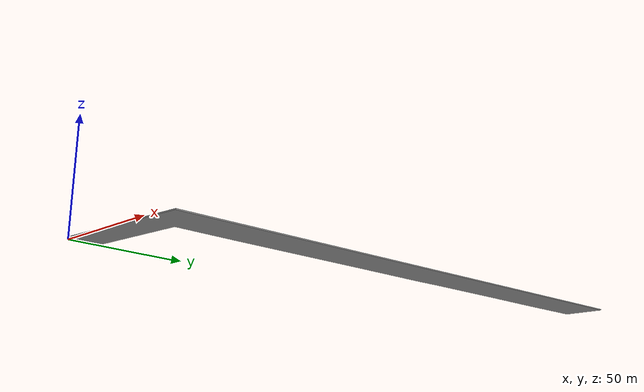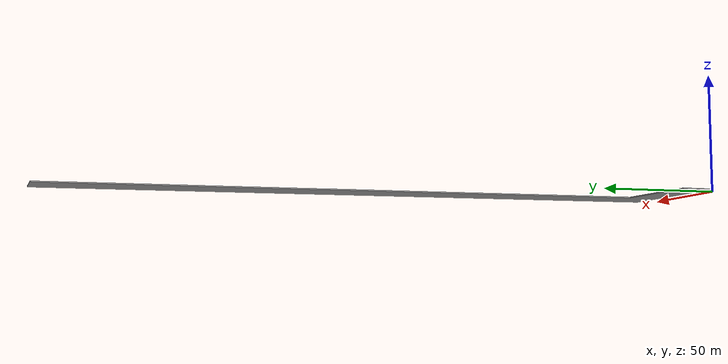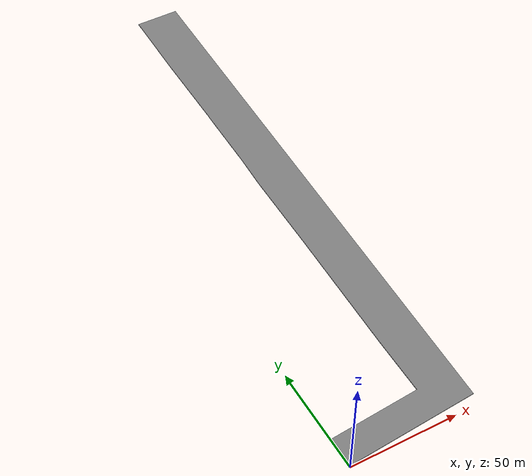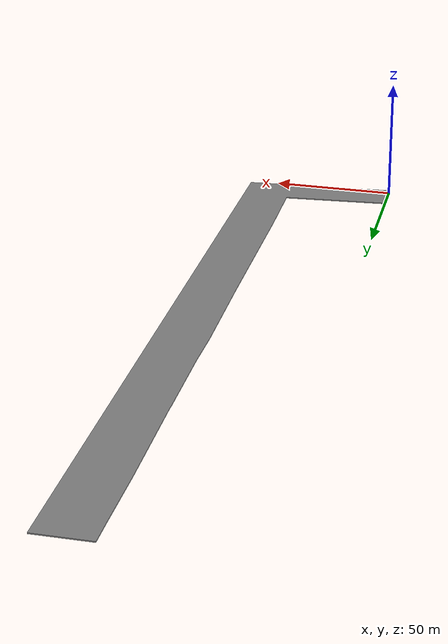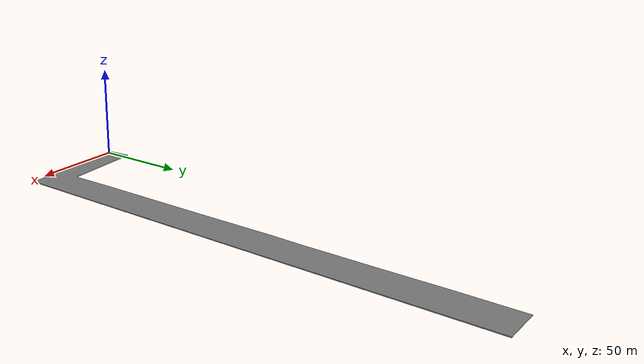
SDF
<?xml version='1.0'?>
<sdf version='1.7'>
  <model name='asphalt_plane_zone_B'>
    <link name='link'>
      <self_collide>0</self_collide>
      <gravity>1</gravity>
      <inertial>
        <mass>1</mass>
        <pose>0 0 0 0 0 0</pose>
        <inertia>
          <ixx>1</ixx>
          <ixy>0</ixy>
          <ixz>0</ixz>
          <iyy>1</iyy>
          <iyz>0</iyz>
          <izz>1</izz>
        </inertia>
      </inertial>
      <enable_wind>0</enable_wind>
      <kinematic>0</kinematic>
      <pose>0 0 1.015 0 0 -0.045</pose>
      <visual name='visual'>
        <pose>0 0 0 0 0 0</pose>
        <geometry>
          <mesh>
            <uri>/marinero_simulations/models/asphalt_plane_zone_B/meshes/asphalt_plane_zone_B.dae</uri>
            <scale>1 1 1</scale>
          </mesh>
        </geometry>
        <material>
          <script>
            <uri>/marinero_simulations/models/asphalt_plane_zone_B/materials/scripts</uri>
            <uri>/marinero_simulations/models/asphalt_plane_zone_B/materials/textures/tarmac.png</uri>
            <name>asphalt_B/texture</name>
          </script>
          <shader type='pixel'>
            <normal_map>__default__</normal_map>
          </shader>
          <ambient>0.5 0.5 0.5 1</ambient>
          <diffuse>0.5 0.5 0.5 1</diffuse>
          <specular>0.2 0.2 0.2 1</specular>
          <emissive>0 0 0 1</emissive>
        </material>
        <transparency>0</transparency>
        <cast_shadows>1</cast_shadows>
      </visual>
      <collision name='collision'>
        <laser_retro>0</laser_retro>
        <max_contacts>10</max_contacts>
        <pose>0 0 0 0 0 0</pose>
        <geometry>
          <mesh>
            <uri>/marinero_simulations/models/asphalt_plane_zone_B/meshes/asphalt_plane_zone_B.dae</uri>
            <scale>1 1 1</scale>
          </mesh>
        </geometry>
        <surface>
          <friction>
            <ode>
              <mu>1</mu>
              <mu2>1</mu2>
              <fdir1>0 0 0</fdir1>
              <slip1>0.001</slip1>
              <slip2>1e-05</slip2>
            </ode>
            <torsional>
              <coefficient>1</coefficient>
              <patch_radius>0</patch_radius>
              <surface_radius>0</surface_radius>
              <use_patch_radius>1</use_patch_radius>
              <ode>
                <slip>0</slip>
              </ode>
            </torsional>
          </friction>
          <bounce>
            <restitution_coefficient>0</restitution_coefficient>
            <threshold>1e+06</threshold>
          </bounce>
          <contact>
            <collide_without_contact>0</collide_without_contact>
            <collide_without_contact_bitmask>1</collide_without_contact_bitmask>
            <collide_bitmask>1</collide_bitmask>
            <ode>
              <soft_cfm>0</soft_cfm>
              <soft_erp>0.2</soft_erp>
              <kp>1e+13</kp>
              <kd>1</kd>
              <max_vel>0.01</max_vel>
              <min_depth>0</min_depth>
            </ode>
            <bullet>
              <split_impulse>1</split_impulse>
              <split_impulse_penetration_threshold>-0.01</split_impulse_penetration_threshold>
              <soft_cfm>0</soft_cfm>
              <soft_erp>0.2</soft_erp>
              <kp>1e+13</kp>
              <kd>1</kd>
            </bullet>
          </contact>
        </surface>
      </collision>
    </link>
    <static>1</static>
    <allow_auto_disable>1</allow_auto_disable>
  </model>
</sdf>
